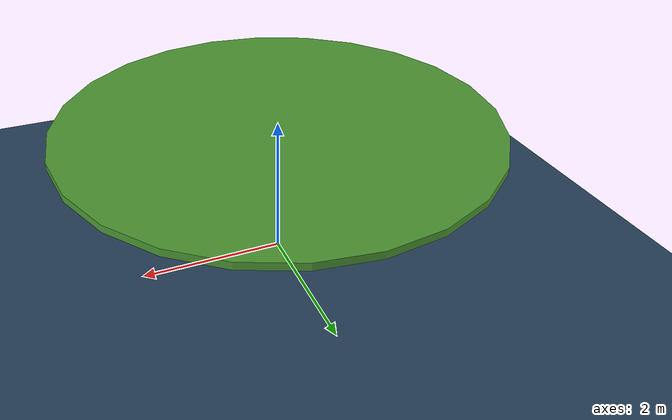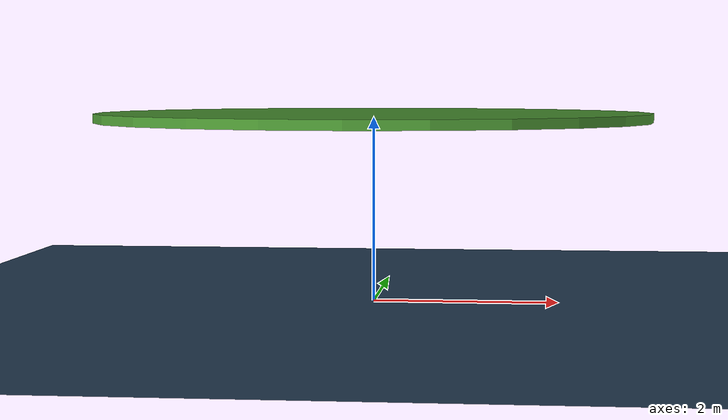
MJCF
<mujoco model="circular_ring_platform">
  <compiler angle="degree" coordinate="local" inertiafromgeom="true" autolimits="true"/>
  <option integrator="RK4" timestep="0.001" gravity="0 0 -9.81"/>

  <visual>
    <headlight diffuse="0.6 0.6 0.6" ambient="0.3 0.3 0.3" specular="0 0 0"/>
    <rgba haze="0.15 0.25 0.35 1"/>
    <global azimuth="120" elevation="-20"/>
  </visual>

  <statistic center="0 0 0.3" extent="1.2"/>

  <asset>
    <texture name="sky" type="skybox" builtin="gradient" rgb1="0.3 0.5 0.7" rgb2="0 0 0" width="512" height="3072"/>
    <texture name="groundplane" type="2d" builtin="checker" mark="edge"
             rgb1="0.2 0.3 0.4" rgb2="0.1 0.2 0.3" markrgb="0.8 0.8 0.8"
             width="300" height="300"/>
    <material name="groundplane" texture="groundplane" texuniform="true" texrepeat="5 5" reflectance="0.2"/>
    <material name="platform_mat" rgba="0.3 0.6 0.2 1" reflectance="0.2" shininess="8"/>
    <material name="hole_mat" rgba="0 0 0 0" />
  </asset>

  <worldbody>
    <light pos="0 0 3" dir="0 0 -1" directional="false"/>

    <geom name="floor"
          type="plane"
          size="0 0 0.05"
          material="groundplane"
          friction="150 150 150"/>

    <!-- Outer cylinder: platform #TODO: Chnage 0.4 to proper heigth -->
    <geom name="outer_ring"
          type="cylinder"
          pos="0 0 2.0"
          size="3.0 0.05"
          material="platform_mat"
          condim="4"/>

    <!-- Inner cylinder -->
    <geom name="inner_hole"
          type="cylinder"
          pos="0 0 1.0"
          size="0.5 1.0"
          material="hole_mat"
          contype="0"
          conaffinity="0"
          group="1"/>
  </worldbody>
</mujoco>
